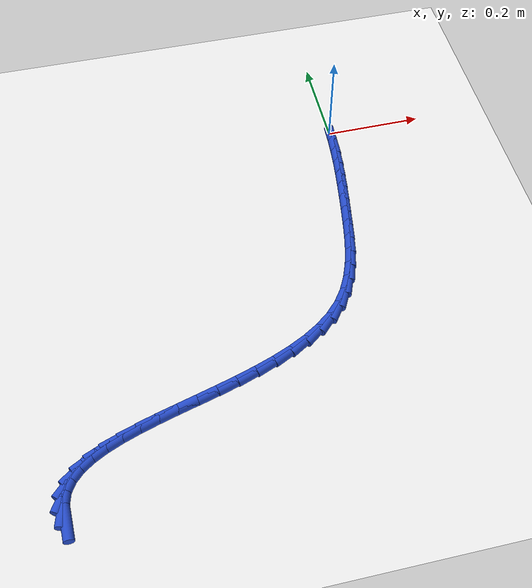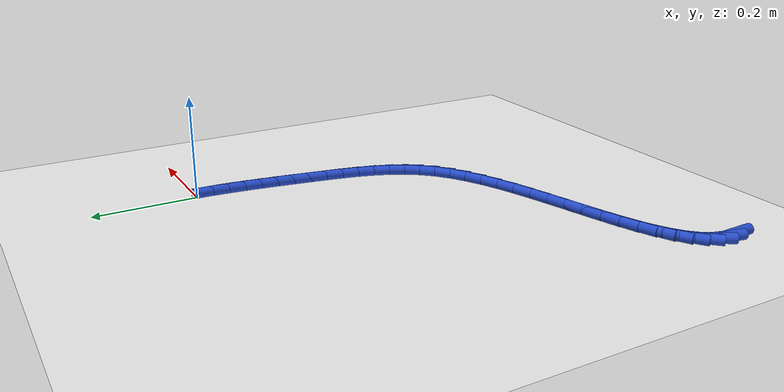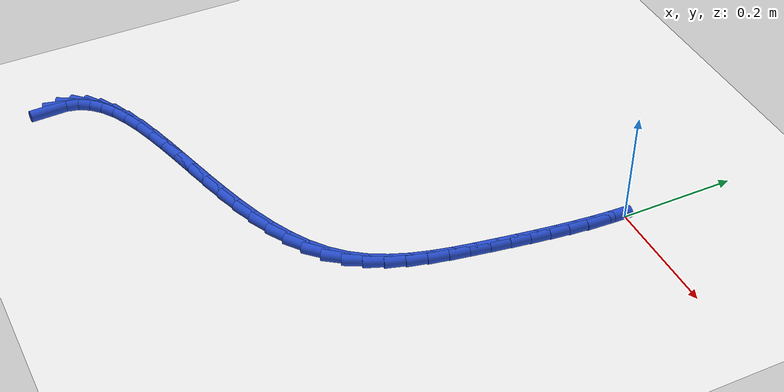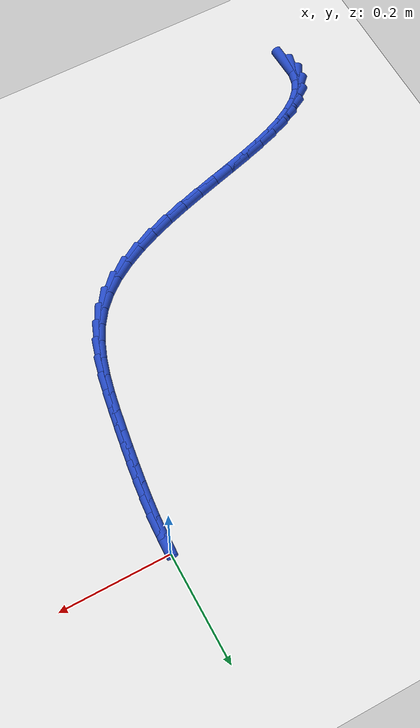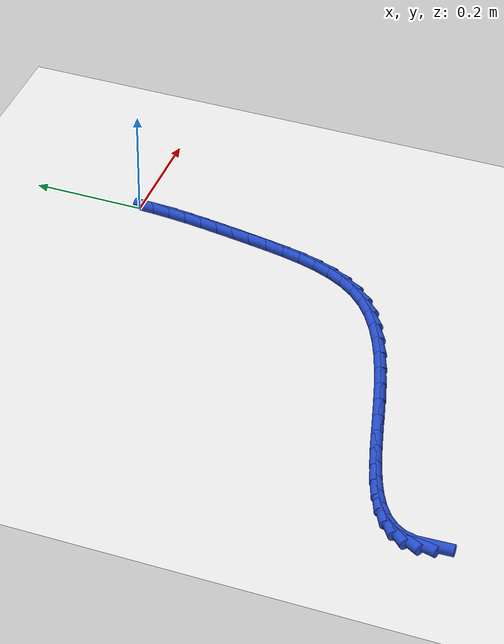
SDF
<sdf version="1.6">
 <world name="default">
  <model name="ground_plane">
   <static>1</static>
   <link name="link">
    <collision name="collision">
     <geometry><plane><normal>0 0 1</normal><size>100 100</size></plane></geometry>
     <surface><friction><ode><mu>100</mu><mu2>50</mu2></ode></friction></surface>
    </collision>
    <visual name="visual">
     <cast_shadows>0</cast_shadows>
     <geometry><plane><normal>0 0 1</normal><size>100 100</size></plane></geometry>
     <material>
      <script><uri>file://media/materials/scripts/gazebo.material</uri><name>Gazebo/WhiteGlow</name></script>
     </material>
    </visual>
   </link>
  </model>
  <model name="line">
   <link name="link_236">
    <pose>-0.6501433006028149 -0.7467498639544903 0.01 0 1.57 -1.5325280384249533</pose>
    <collision name="collision">
     <geometry><cylinder><radius>0.01</radius><length>0.08</length></cylinder></geometry>
    </collision>
    <visual name="visual">
     <material>
      <script><name>Gazebo/Blue</name><uri>file://media/materials/scripts/gazebo.material</uri></script>
     </material>
     <geometry><cylinder><radius>0.01</radius><length>0.08</length></cylinder></geometry>
    </visual>
   </link>
   <link name="link_237">
    <pose>-0.651062567697554 -0.7227399501019983 0.01 0 1.57 1.3282424924324308</pose>
    <collision name="collision">
     <geometry><cylinder><radius>0.01</radius><length>0.08</length></cylinder></geometry>
    </collision>
    <visual name="visual">
     <material>
      <script><name>Gazebo/Blue</name><uri>file://media/materials/scripts/gazebo.material</uri></script>
     </material>
     <geometry><cylinder><radius>0.01</radius><length>0.08</length></cylinder></geometry>
    </visual>
   </link>
   <link name="link_238">
    <pose>-0.6457702888790091 -0.7013505388878831 0.01 0 1.57 1.0359118986111762</pose>
    <collision name="collision">
     <geometry><cylinder><radius>0.01</radius><length>0.08</length></cylinder></geometry>
    </collision>
    <visual name="visual">
     <material>
      <script><name>Gazebo/Blue</name><uri>file://media/materials/scripts/gazebo.material</uri></script>
     </material>
     <geometry><cylinder><radius>0.01</radius><length>0.08</length></cylinder></geometry>
    </visual>
   </link>
   <link name="link_239">
    <pose>-0.6345421151365687 -0.682399943291505 0.01 0 1.57 0.7923275078979719</pose>
    <collision name="collision">
     <geometry><cylinder><radius>0.01</radius><length>0.08</length></cylinder></geometry>
    </collision>
    <visual name="visual">
     <material>
      <script><name>Gazebo/Blue</name><uri>file://media/materials/scripts/gazebo.material</uri></script>
     </material>
     <geometry><cylinder><radius>0.01</radius><length>0.08</length></cylinder></geometry>
    </visual>
   </link>
   <link name="link_240">
    <pose>-0.6179615522286549 -0.6655879884206592 0.01 0 1.57 0.6116336572546257</pose>
    <collision name="collision">
     <geometry><cylinder><radius>0.01</radius><length>0.08</length></cylinder></geometry>
    </collision>
    <visual name="visual">
     <material>
      <script><name>Gazebo/Blue</name><uri>file://media/materials/scripts/gazebo.material</uri></script>
     </material>
     <geometry><cylinder><radius>0.01</radius><length>0.08</length></cylinder></geometry>
    </visual>
   </link>
   <link name="link_241">
    <pose>-0.5966121207093978 -0.6506144936885365 0.01 0 1.57 0.48435088191307707</pose>
    <collision name="collision">
     <geometry><cylinder><radius>0.01</radius><length>0.08</length></cylinder></geometry>
    </collision>
    <visual name="visual">
     <material>
      <script><name>Gazebo/Blue</name><uri>file://media/materials/scripts/gazebo.material</uri></script>
     </material>
     <geometry><cylinder><radius>0.01</radius><length>0.08</length></cylinder></geometry>
    </visual>
   </link>
   <link name="link_242">
    <pose>-0.5710773411329259 -0.6371792785083258 0.01 0 1.57 0.3964528762368586</pose>
    <collision name="collision">
     <geometry><cylinder><radius>0.01</radius><length>0.08</length></cylinder></geometry>
    </collision>
    <visual name="visual">
     <material>
      <script><name>Gazebo/Blue</name><uri>file://media/materials/scripts/gazebo.material</uri></script>
     </material>
     <geometry><cylinder><radius>0.01</radius><length>0.08</length></cylinder></geometry>
    </visual>
   </link>
   <link name="link_243">
    <pose>-0.5419407340533698 -0.6249821622932177 0.01 0 1.57 0.33681272877781443</pose>
    <collision name="collision">
     <geometry><cylinder><radius>0.01</radius><length>0.08</length></cylinder></geometry>
    </collision>
    <visual name="visual">
     <material>
      <script><name>Gazebo/Blue</name><uri>file://media/materials/scripts/gazebo.material</uri></script>
     </material>
     <geometry><cylinder><radius>0.01</radius><length>0.08</length></cylinder></geometry>
    </visual>
   </link>
   <link name="link_244">
    <pose>-0.5097858200248574 -0.6137229644564014 0.01 0 1.57 0.2979303651580535</pose>
    <collision name="collision">
     <geometry><cylinder><radius>0.01</radius><length>0.08</length></cylinder></geometry>
    </collision>
    <visual name="visual">
     <material>
      <script><name>Gazebo/Blue</name><uri>file://media/materials/scripts/gazebo.material</uri></script>
     </material>
     <geometry><cylinder><radius>0.01</radius><length>0.08</length></cylinder></geometry>
    </visual>
   </link>
   <link name="link_245">
    <pose>-0.47519611960152003 -0.6031015044110672 0.01 0 1.57 0.2750542584152286</pose>
    <collision name="collision">
     <geometry><cylinder><radius>0.01</radius><length>0.08</length></cylinder></geometry>
    </collision>
    <visual name="visual">
     <material>
      <script><name>Gazebo/Blue</name><uri>file://media/materials/scripts/gazebo.material</uri></script>
     </material>
     <geometry><cylinder><radius>0.01</radius><length>0.08</length></cylinder></geometry>
    </visual>
   </link>
   <link name="link_246">
    <pose>-0.43875515333748566 -0.5928176015704046 0.01 0 1.57 0.26532205329376857</pose>
    <collision name="collision">
     <geometry><cylinder><radius>0.01</radius><length>0.08</length></cylinder></geometry>
    </collision>
    <visual name="visual">
     <material>
      <script><name>Gazebo/Blue</name><uri>file://media/materials/scripts/gazebo.material</uri></script>
     </material>
     <geometry><cylinder><radius>0.01</radius><length>0.08</length></cylinder></geometry>
    </visual>
   </link>
   <link name="link_247">
    <pose>-0.40104644178688303 -0.5825710753476036 0.01 0 1.57 0.2671858882308092</pose>
    <collision name="collision">
     <geometry><cylinder><radius>0.01</radius><length>0.08</length></cylinder></geometry>
    </collision>
    <visual name="visual">
     <material>
      <script><name>Gazebo/Blue</name><uri>file://media/materials/scripts/gazebo.material</uri></script>
     </material>
     <geometry><cylinder><radius>0.01</radius><length>0.08</length></cylinder></geometry>
    </visual>
   </link>
   <link name="link_248">
    <pose>-0.3626535055038435 -0.572061745155854 0.01 0 1.57 0.2800792254025001</pose>
    <collision name="collision">
     <geometry><cylinder><radius>0.01</radius><length>0.08</length></cylinder></geometry>
    </collision>
    <visual name="visual">
     <material>
      <script><name>Gazebo/Blue</name><uri>file://media/materials/scripts/gazebo.material</uri></script>
     </material>
     <geometry><cylinder><radius>0.01</radius><length>0.08</length></cylinder></geometry>
    </visual>
   </link>
   <link name="link_249">
    <pose>-0.32415986504249406 -0.560989430408345 0.01 0 1.57 0.30425277500642556</pose>
    <collision name="collision">
     <geometry><cylinder><radius>0.01</radius><length>0.08</length></cylinder></geometry>
    </collision>
    <visual name="visual">
     <material>
      <script><name>Gazebo/Blue</name><uri>file://media/materials/scripts/gazebo.material</uri></script>
     </material>
     <geometry><cylinder><radius>0.01</radius><length>0.08</length></cylinder></geometry>
    </visual>
   </link>
   <link name="link_250">
    <pose>-0.2861490409569667 -0.5490539505182677 0.01 0 1.57 0.340726298738227</pose>
    <collision name="collision">
     <geometry><cylinder><radius>0.01</radius><length>0.08</length></cylinder></geometry>
    </collision>
    <visual name="visual">
     <material>
      <script><name>Gazebo/Blue</name><uri>file://media/materials/scripts/gazebo.material</uri></script>
     </material>
     <geometry><cylinder><radius>0.01</radius><length>0.08</length></cylinder></geometry>
    </visual>
   </link>
   <link name="link_251">
    <pose>-0.24920455380138828 -0.5359551248988105 0.01 0 1.57 0.3913158955352195</pose>
    <collision name="collision">
     <geometry><cylinder><radius>0.01</radius><length>0.08</length></cylinder></geometry>
    </collision>
    <visual name="visual">
     <material>
      <script><name>Gazebo/Blue</name><uri>file://media/materials/scripts/gazebo.material</uri></script>
     </material>
     <geometry><cylinder><radius>0.01</radius><length>0.08</length></cylinder></geometry>
    </visual>
   </link>
   <link name="link_252">
    <pose>-0.21390992412989052 -0.5213927729631644 0.01 0 1.57 0.4586853563261653</pose>
    <collision name="collision">
     <geometry><cylinder><radius>0.01</radius><length>0.08</length></cylinder></geometry>
    </collision>
    <visual name="visual">
     <material>
      <script><name>Gazebo/Blue</name><uri>file://media/materials/scripts/gazebo.material</uri></script>
     </material>
     <geometry><cylinder><radius>0.01</radius><length>0.08</length></cylinder></geometry>
    </visual>
   </link>
   <link name="link_253">
    <pose>-0.18084867249660067 -0.5050667141245182 0.01 0 1.57 0.5463144029779499</pose>
    <collision name="collision">
     <geometry><cylinder><radius>0.01</radius><length>0.08</length></cylinder></geometry>
    </collision>
    <visual name="visual">
     <material>
      <script><name>Gazebo/Blue</name><uri>file://media/materials/scripts/gazebo.material</uri></script>
     </material>
     <geometry><cylinder><radius>0.01</radius><length>0.08</length></cylinder></geometry>
    </visual>
   </link>
   <link name="link_254">
    <pose>-0.15060431945565003 -0.48667676779606295 0.01 0 1.57 0.658144535426784</pose>
    <collision name="collision">
     <geometry><cylinder><radius>0.01</radius><length>0.08</length></cylinder></geometry>
    </collision>
    <visual name="visual">
     <material>
      <script><name>Gazebo/Blue</name><uri>file://media/materials/scripts/gazebo.material</uri></script>
     </material>
     <geometry><cylinder><radius>0.01</radius><length>0.08</length></cylinder></geometry>
    </visual>
   </link>
   <link name="link_255">
    <pose>-0.12376038556116625 -0.46592275339098693 0.01 0 1.57 0.7973424767201823</pose>
    <collision name="collision">
     <geometry><cylinder><radius>0.01</radius><length>0.08</length></cylinder></geometry>
    </collision>
    <visual name="visual">
     <material>
      <script><name>Gazebo/Blue</name><uri>file://media/materials/scripts/gazebo.material</uri></script>
     </material>
     <geometry><cylinder><radius>0.01</radius><length>0.08</length></cylinder></geometry>
    </visual>
   </link>
   <link name="link_256">
    <pose>-0.10089704336189176 -0.4425066082048711 0.01 0 1.57 0.9502809212665372</pose>
    <collision name="collision">
     <geometry><cylinder><radius>0.01</radius><length>0.08</length></cylinder></geometry>
    </collision>
    <visual name="visual">
     <material>
      <script><name>Gazebo/Blue</name><uri>file://media/materials/scripts/gazebo.material</uri></script>
     </material>
     <geometry><cylinder><radius>0.01</radius><length>0.08</length></cylinder></geometry>
    </visual>
   </link>
   <link name="link_257">
    <pose>-0.08221690217103518 -0.41636910861349236 0.01 0 1.57 1.085423015590084</pose>
    <collision name="collision">
     <geometry><cylinder><radius>0.01</radius><length>0.08</length></cylinder></geometry>
    </collision>
    <visual name="visual">
     <material>
      <script><name>Gazebo/Blue</name><uri>file://media/materials/scripts/gazebo.material</uri></script>
     </material>
     <geometry><cylinder><radius>0.01</radius><length>0.08</length></cylinder></geometry>
    </visual>
   </link>
   <link name="link_258">
    <pose>-0.0672036546819885 -0.3879058035129829 0.01 0 1.57 1.1958062432506567</pose>
    <collision name="collision">
     <geometry><cylinder><radius>0.01</radius><length>0.08</length></cylinder></geometry>
    </collision>
    <visual name="visual">
     <material>
      <script><name>Gazebo/Blue</name><uri>file://media/materials/scripts/gazebo.material</uri></script>
     </material>
     <geometry><cylinder><radius>0.01</radius><length>0.08</length></cylinder></geometry>
    </visual>
   </link>
   <link name="link_259">
    <pose>-0.055260365094280194 -0.3575632457996033 0.01 0 1.57 1.2811395400313876</pose>
    <collision name="collision">
     <geometry><cylinder><radius>0.01</radius><length>0.08</length></cylinder></geometry>
    </collision>
    <visual name="visual">
     <material>
      <script><name>Gazebo/Blue</name><uri>file://media/materials/scripts/gazebo.material</uri></script>
     </material>
     <geometry><cylinder><radius>0.01</radius><length>0.08</length></cylinder></geometry>
    </visual>
   </link>
   <link name="link_260">
    <pose>-0.045790097607437165 -0.3257879883696105 0.01 0 1.57 1.3430165084548102</pose>
    <collision name="collision">
     <geometry><cylinder><radius>0.01</radius><length>0.08</length></cylinder></geometry>
    </collision>
    <visual name="visual">
     <material>
      <script><name>Gazebo/Blue</name><uri>file://media/materials/scripts/gazebo.material</uri></script>
     </material>
     <geometry><cylinder><radius>0.01</radius><length>0.08</length></cylinder></geometry>
    </visual>
   </link>
   <link name="link_261">
    <pose>-0.03819591642098757 -0.2930265841192651 0.01 0 1.57 1.3833868053577851</pose>
    <collision name="collision">
     <geometry><cylinder><radius>0.01</radius><length>0.08</length></cylinder></geometry>
    </collision>
    <visual name="visual">
     <material>
      <script><name>Gazebo/Blue</name><uri>file://media/materials/scripts/gazebo.material</uri></script>
     </material>
     <geometry><cylinder><radius>0.01</radius><length>0.08</length></cylinder></geometry>
    </visual>
   </link>
   <link name="link_262">
    <pose>-0.03188088573445849 -0.25972558594482387 0.01 0 1.57 1.4037003620294624</pose>
    <collision name="collision">
     <geometry><cylinder><radius>0.01</radius><length>0.08</length></cylinder></geometry>
    </collision>
    <visual name="visual">
     <material>
      <script><name>Gazebo/Blue</name><uri>file://media/materials/scripts/gazebo.material</uri></script>
     </material>
     <geometry><cylinder><radius>0.01</radius><length>0.08</length></cylinder></geometry>
    </visual>
   </link>
   <link name="link_263">
    <pose>-0.026248329418771688 -0.22633138538938893 0.01 0 1.57 1.4101298421370705</pose>
    <collision name="collision">
     <geometry><cylinder><radius>0.01</radius><length>0.08</length></cylinder></geometry>
    </collision>
    <visual name="visual">
     <material>
      <script><name>Gazebo/Blue</name><uri>file://media/materials/scripts/gazebo.material</uri></script>
     </material>
     <geometry><cylinder><radius>0.01</radius><length>0.08</length></cylinder></geometry>
    </visual>
   </link>
   <link name="link_264">
    <pose>-0.020876023828239658 -0.19318197368751158 0.01 0 1.57 1.4181033821090856</pose>
    <collision name="collision">
     <geometry><cylinder><radius>0.01</radius><length>0.08</length></cylinder></geometry>
    </collision>
    <visual name="visual">
     <material>
      <script><name>Gazebo/Blue</name><uri>file://media/materials/scripts/gazebo.material</uri></script>
     </material>
     <geometry><cylinder><radius>0.01</radius><length>0.08</length></cylinder></geometry>
    </visual>
   </link>
   <link name="link_265">
    <pose>-0.01581870960481745 -0.16031896867199713 0.01 0 1.57 1.4303496573315646</pose>
    <collision name="collision">
     <geometry><cylinder><radius>0.01</radius><length>0.08</length></cylinder></geometry>
    </collision>
    <visual name="visual">
     <material>
      <script><name>Gazebo/Blue</name><uri>file://media/materials/scripts/gazebo.material</uri></script>
     </material>
     <geometry><cylinder><radius>0.01</radius><length>0.08</length></cylinder></geometry>
    </visual>
   </link>
   <link name="link_266">
    <pose>-0.01121190077723761 -0.1277337976602766 0.01 0 1.57 1.447011111534722</pose>
    <collision name="collision">
     <geometry><cylinder><radius>0.01</radius><length>0.08</length></cylinder></geometry>
    </collision>
    <visual name="visual">
     <material>
      <script><name>Gazebo/Blue</name><uri>file://media/materials/scripts/gazebo.material</uri></script>
     </material>
     <geometry><cylinder><radius>0.01</radius><length>0.08</length></cylinder></geometry>
    </visual>
   </link>
   <link name="link_267">
    <pose>-0.007191111374233215 -0.09541788796978452 0.01 0 1.57 1.4682333356183814</pose>
    <collision name="collision">
     <geometry><cylinder><radius>0.01</radius><length>0.08</length></cylinder></geometry>
    </collision>
    <visual name="visual">
     <material>
      <script><name>Gazebo/Blue</name><uri>file://media/materials/scripts/gazebo.material</uri></script>
     </material>
     <geometry><cylinder><radius>0.01</radius><length>0.08</length></cylinder></geometry>
    </visual>
   </link>
   <link name="link_268">
    <pose>-0.003891855424536942 -0.06336266691795273 0.01 0 1.57 1.4941552296944756</pose>
    <collision name="collision">
     <geometry><cylinder><radius>0.01</radius><length>0.08</length></cylinder></geometry>
    </collision>
    <visual name="visual">
     <material>
      <script><name>Gazebo/Blue</name><uri>file://media/materials/scripts/gazebo.material</uri></script>
     </material>
     <geometry><cylinder><radius>0.01</radius><length>0.08</length></cylinder></geometry>
    </visual>
   </link>
   <link name="link_269">
    <pose>-0.0014496469568815525 -0.03155956182221299 0.01 0 1.57 1.5248949066344721</pose>
    <collision name="collision">
     <geometry><cylinder><radius>0.01</radius><length>0.08</length></cylinder></geometry>
    </collision>
    <visual name="visual">
     <material>
      <script><name>Gazebo/Blue</name><uri>file://media/materials/scripts/gazebo.material</uri></script>
     </material>
     <geometry><cylinder><radius>0.01</radius><length>0.08</length></cylinder></geometry>
    </visual>
   </link>
  </model>
 </world>
</sdf>
